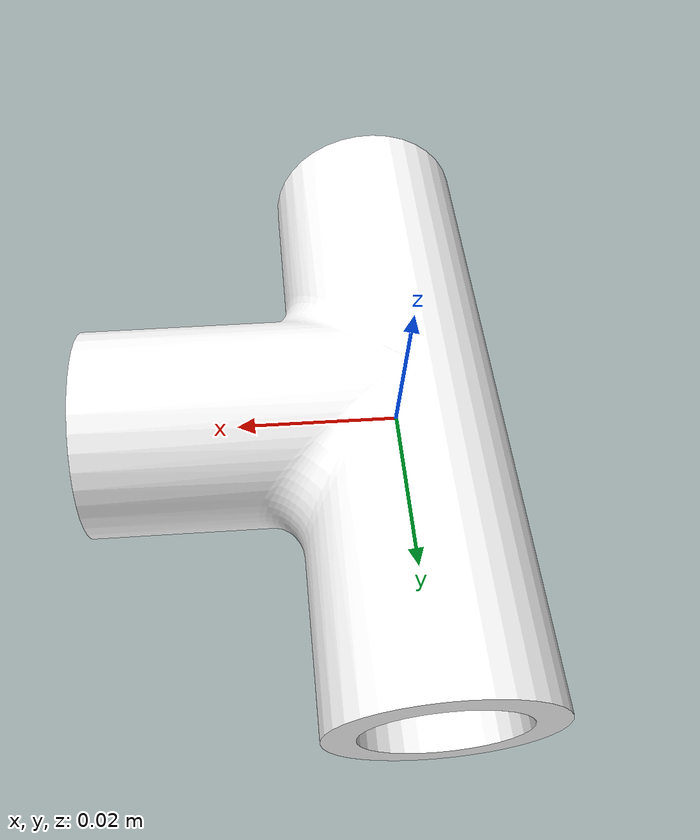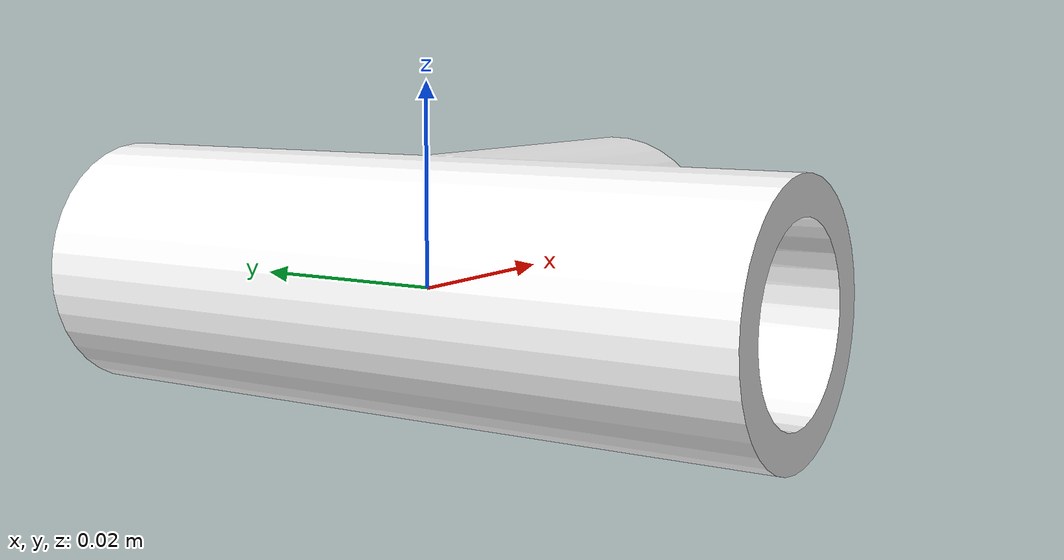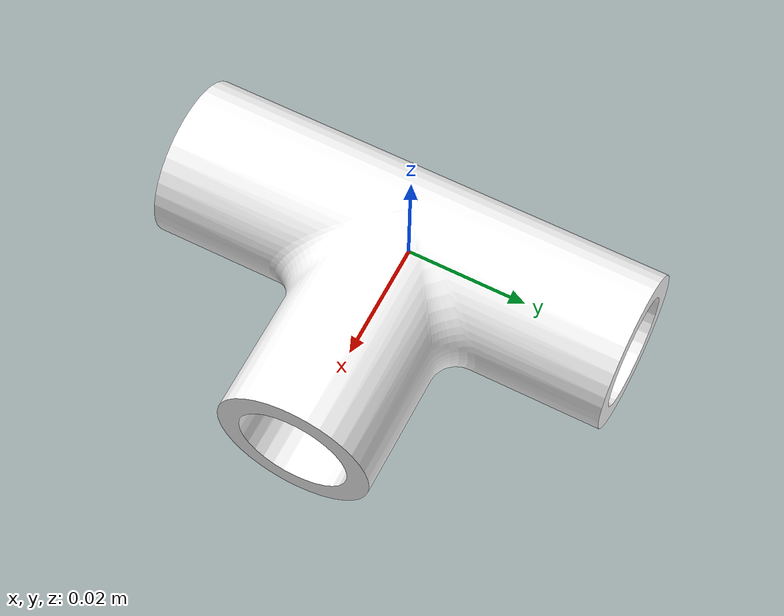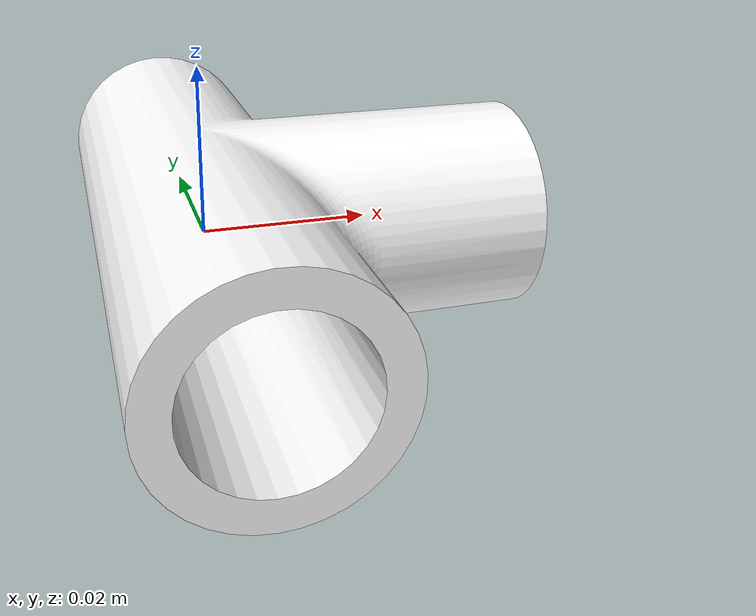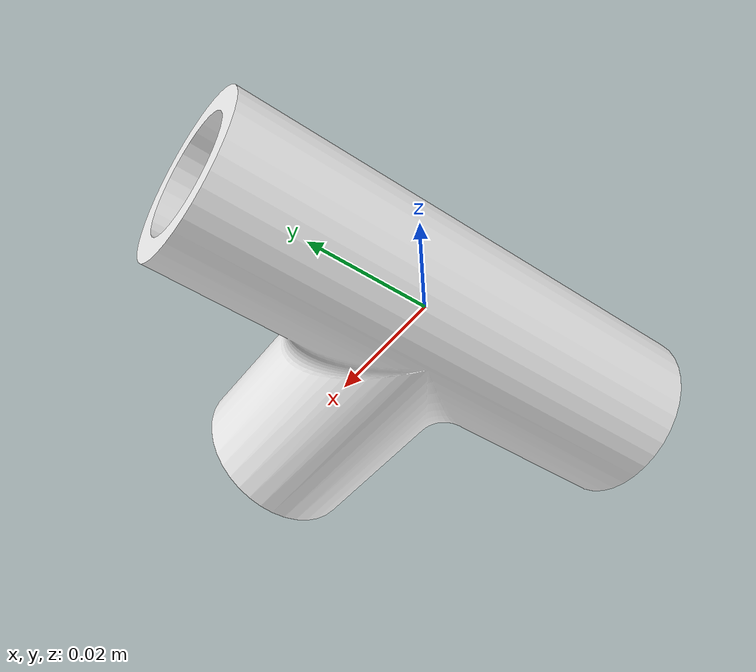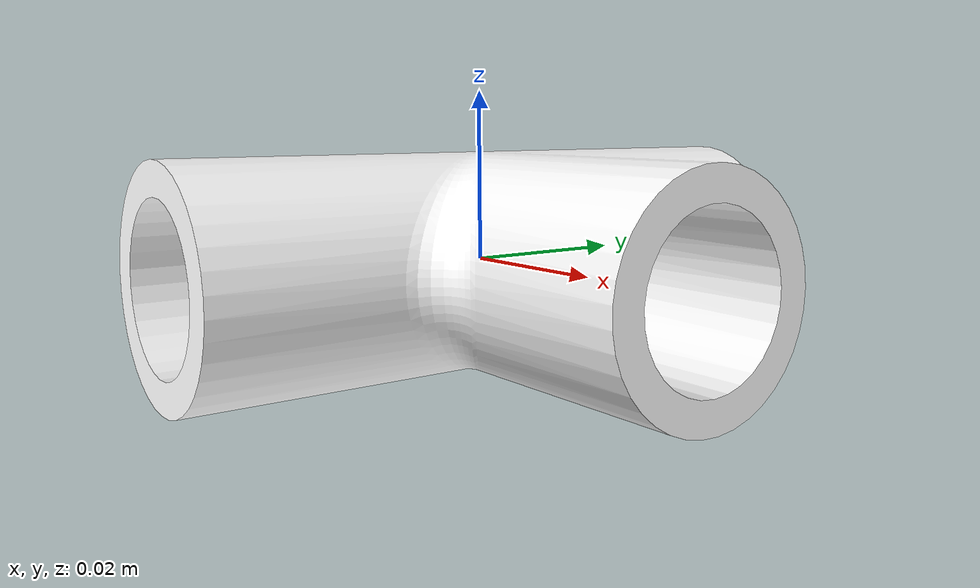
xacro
<?xml version="1.0"?>
<robot name="cardboard" xmlns:xacro="http://ros.org/wiki/xacro">
  <xacro:include filename="$(find bayes_pose)/model/common/common.xacro" />

  <xacro:arg name="id" default="00"/>

  <link name="t_pipe_link_$(arg id)">
    <visual>
      <origin xyz="0 0 0" rpy="0 0 0" />
      <geometry>
        <mesh filename="package://bayes_pose/model/meshes/STL/t_pipe.stl"/>
      </geometry>
      <material name="white">
        <color rgba="1.0 1.0 1.0 1.0"/>
      </material>
    </visual>
    <collision>
      <origin xyz="0 0 0" rpy="0 0 0" />
      <geometry>
        <mesh filename="package://bayes_pose/model/meshes/STL/t_pipe.stl"/>
      </geometry>
    </collision>
    <inertial>
      <origin xyz="0 0 0"/>
      <mass value="0.05"/>
      <inertia ixx="0.002" ixy="0.0" ixz="0.0" iyy="0.002" iyz="0.0" izz="0.0"/>
    </inertial>
  </link>

</robot>
